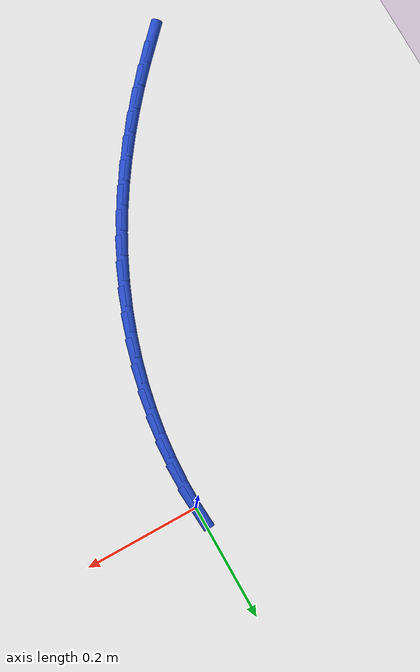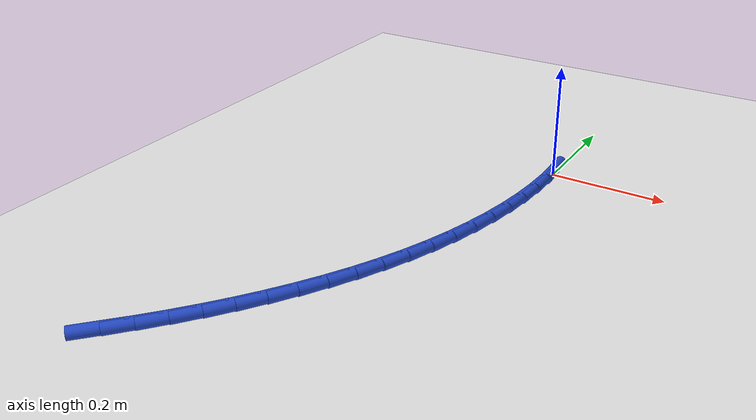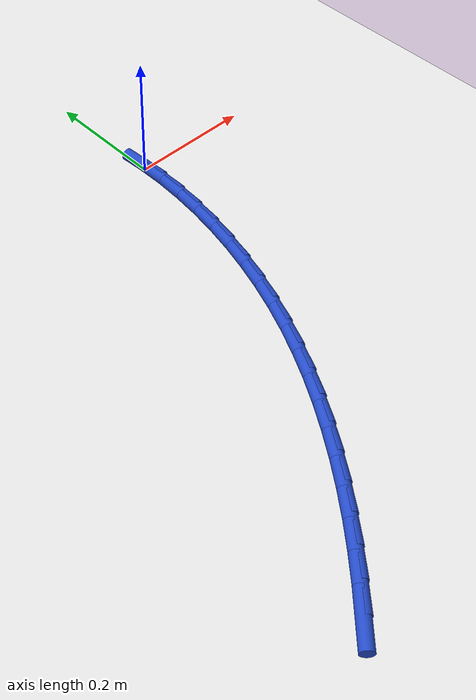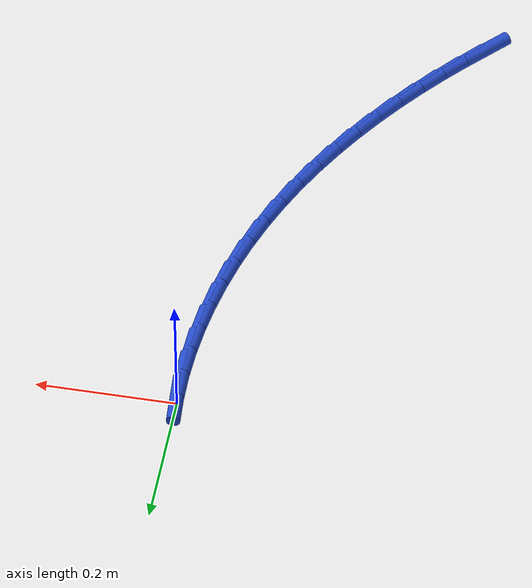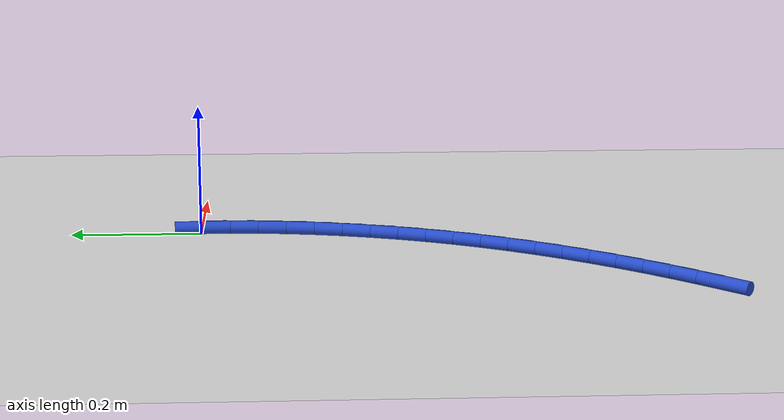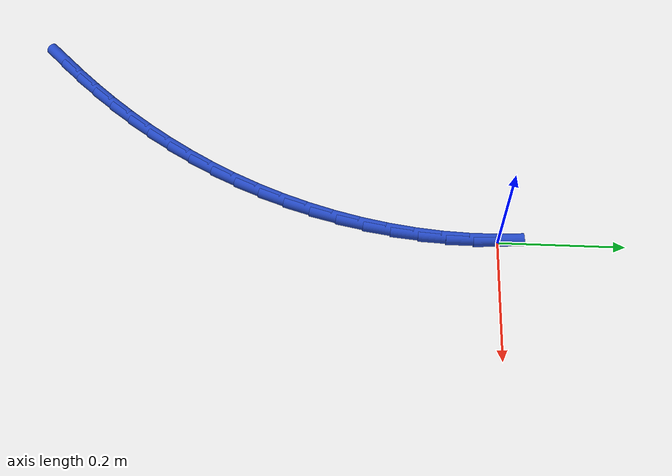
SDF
<sdf version="1.6">
 <world name="default">
  <model name="ground_plane">
   <static>1</static>
   <link name="link">
    <collision name="collision">
     <geometry><plane><normal>0 0 1</normal><size>100 100</size></plane></geometry>
     <surface><friction><ode><mu>100</mu><mu2>50</mu2></ode></friction></surface>
    </collision>
    <visual name="visual">
     <cast_shadows>0</cast_shadows>
     <geometry><plane><normal>0 0 1</normal><size>100 100</size></plane></geometry>
     <material>
      <script><uri>file://media/materials/scripts/gazebo.material</uri><name>Gazebo/WhiteGlow</name></script>
     </material>
    </visual>
   </link>
  </model>
  <model name="line">
   <link name="link_141">
    <pose>-0.32442191999599984 -0.7402582335218896 0.01 0 1.57 0.8094644933862783</pose>
    <collision name="collision">
     <geometry><cylinder><radius>0.01</radius><length>0.08</length></cylinder></geometry>
    </collision>
    <visual name="visual">
     <material>
      <script><name>Gazebo/Blue</name><uri>file://media/materials/scripts/gazebo.material</uri></script>
     </material>
     <geometry><cylinder><radius>0.01</radius><length>0.08</length></cylinder></geometry>
    </visual>
   </link>
   <link name="link_142">
    <pose>-0.2949185162580208 -0.7092994457396464 0.01 0 1.57 0.8390403096895802</pose>
    <collision name="collision">
     <geometry><cylinder><radius>0.01</radius><length>0.08</length></cylinder></geometry>
    </collision>
    <visual name="visual">
     <material>
      <script><name>Gazebo/Blue</name><uri>file://media/materials/scripts/gazebo.material</uri></script>
     </material>
     <geometry><cylinder><radius>0.01</radius><length>0.08</length></cylinder></geometry>
    </visual>
   </link>
   <link name="link_143">
    <pose>-0.2661581825769336 -0.6772753751034213 0.01 0 1.57 0.870017253197634</pose>
    <collision name="collision">
     <geometry><cylinder><radius>0.01</radius><length>0.08</length></cylinder></geometry>
    </collision>
    <visual name="visual">
     <material>
      <script><name>Gazebo/Blue</name><uri>file://media/materials/scripts/gazebo.material</uri></script>
     </material>
     <geometry><cylinder><radius>0.01</radius><length>0.08</length></cylinder></geometry>
    </visual>
   </link>
   <link name="link_144">
    <pose>-0.23824021957058938 -0.6441823610554582 0.01 0 1.57 0.9025674751337581</pose>
    <collision name="collision">
     <geometry><cylinder><radius>0.01</radius><length>0.08</length></cylinder></geometry>
    </collision>
    <visual name="visual">
     <material>
      <script><name>Gazebo/Blue</name><uri>file://media/materials/scripts/gazebo.material</uri></script>
     </material>
     <geometry><cylinder><radius>0.01</radius><length>0.08</length></cylinder></geometry>
    </visual>
   </link>
   <link name="link_145">
    <pose>-0.2112876415035133 -0.6100381769081172 0.01 0 1.57 0.9368048212703783</pose>
    <collision name="collision">
     <geometry><cylinder><radius>0.01</radius><length>0.08</length></cylinder></geometry>
    </collision>
    <visual name="visual">
     <material>
      <script><name>Gazebo/Blue</name><uri>file://media/materials/scripts/gazebo.material</uri></script>
     </material>
     <geometry><cylinder><radius>0.01</radius><length>0.08</length></cylinder></geometry>
    </visual>
   </link>
   <link name="link_146">
    <pose>-0.18542346917085367 -0.5748606018765414 0.01 0 1.57 0.9728383027610654</pose>
    <collision name="collision">
     <geometry><cylinder><radius>0.01</radius><length>0.08</length></cylinder></geometry>
    </collision>
    <visual name="visual">
     <material>
      <script><name>Gazebo/Blue</name><uri>file://media/materials/scripts/gazebo.material</uri></script>
     </material>
     <geometry><cylinder><radius>0.01</radius><length>0.08</length></cylinder></geometry>
    </visual>
   </link>
   <link name="link_147">
    <pose>-0.16077072336776022 -0.5386674151758757 0.01 0 1.57 1.0107691833866859</pose>
    <collision name="collision">
     <geometry><cylinder><radius>0.01</radius><length>0.08</length></cylinder></geometry>
    </collision>
    <visual name="visual">
     <material>
      <script><name>Gazebo/Blue</name><uri>file://media/materials/scripts/gazebo.material</uri></script>
     </material>
     <geometry><cylinder><radius>0.01</radius><length>0.08</length></cylinder></geometry>
    </visual>
   </link>
   <link name="link_148">
    <pose>-0.13745242488938123 -0.5014763960212637 0.01 0 1.57 1.0506872020791012</pose>
    <collision name="collision">
     <geometry><cylinder><radius>0.01</radius><length>0.08</length></cylinder></geometry>
    </collision>
    <visual name="visual">
     <material>
      <script><name>Gazebo/Blue</name><uri>file://media/materials/scripts/gazebo.material</uri></script>
     </material>
     <geometry><cylinder><radius>0.01</radius><length>0.08</length></cylinder></geometry>
    </visual>
   </link>
   <link name="link_149">
    <pose>-0.11559159453086554 -0.4633053236278491 0.01 0 1.57 1.0926659209882363</pose>
    <collision name="collision">
     <geometry><cylinder><radius>0.01</radius><length>0.08</length></cylinder></geometry>
    </collision>
    <visual name="visual">
     <material>
      <script><name>Gazebo/Blue</name><uri>file://media/materials/scripts/gazebo.material</uri></script>
     </material>
     <geometry><cylinder><radius>0.01</radius><length>0.08</length></cylinder></geometry>
    </visual>
   </link>
   <link name="link_150">
    <pose>-0.09531125308736192 -0.424171977210776 0.01 0 1.57 1.1367572335477811</pose>
    <collision name="collision">
     <geometry><cylinder><radius>0.01</radius><length>0.08</length></cylinder></geometry>
    </collision>
    <visual name="visual">
     <material>
      <script><name>Gazebo/Blue</name><uri>file://media/materials/scripts/gazebo.material</uri></script>
     </material>
     <geometry><cylinder><radius>0.01</radius><length>0.08</length></cylinder></geometry>
    </visual>
   </link>
   <link name="link_151">
    <pose>-0.07673442135401896 -0.38409413598518743 0.01 0 1.57 1.1826431945253815</pose>
    <collision name="collision">
     <geometry><cylinder><radius>0.01</radius><length>0.08</length></cylinder></geometry>
    </collision>
    <visual name="visual">
     <material>
      <script><name>Gazebo/Blue</name><uri>file://media/materials/scripts/gazebo.material</uri></script>
     </material>
     <geometry><cylinder><radius>0.01</radius><length>0.08</length></cylinder></geometry>
    </visual>
   </link>
   <link name="link_152">
    <pose>-0.05997600934984536 -0.34310976484577527 0.01 0 1.57 1.2289274677183937</pose>
    <collision name="collision">
     <geometry><cylinder><radius>0.01</radius><length>0.08</length></cylinder></geometry>
    </collision>
    <visual name="visual">
     <material>
      <script><name>Gazebo/Blue</name><uri>file://media/materials/scripts/gazebo.material</uri></script>
     </material>
     <geometry><cylinder><radius>0.01</radius><length>0.08</length></cylinder></geometry>
    </visual>
   </link>
   <link name="link_153">
    <pose>-0.045114913287678596 -0.30134645798262333 0.01 0 1.57 1.2754928407168278</pose>
    <collision name="collision">
     <geometry><cylinder><radius>0.01</radius><length>0.08</length></cylinder></geometry>
    </collision>
    <visual name="visual">
     <material>
      <script><name>Gazebo/Blue</name><uri>file://media/materials/scripts/gazebo.material</uri></script>
     </material>
     <geometry><cylinder><radius>0.01</radius><length>0.08</length></cylinder></geometry>
    </visual>
   </link>
   <link name="link_154">
    <pose>-0.032220037143973104 -0.25895667774616143 0.01 0 1.57 1.3226625828399476</pose>
    <collision name="collision">
     <geometry><cylinder><radius>0.01</radius><length>0.08</length></cylinder></geometry>
    </collision>
    <visual name="visual">
     <material>
      <script><name>Gazebo/Blue</name><uri>file://media/materials/scripts/gazebo.material</uri></script>
     </material>
     <geometry><cylinder><radius>0.01</radius><length>0.08</length></cylinder></geometry>
    </visual>
   </link>
   <link name="link_155">
    <pose>-0.021360284515703383 -0.21609288743124874 0.01 0 1.57 1.3707601993135567</pose>
    <collision name="collision">
     <geometry><cylinder><radius>0.01</radius><length>0.08</length></cylinder></geometry>
    </collision>
    <visual name="visual">
     <material>
      <script><name>Gazebo/Blue</name><uri>file://media/materials/scripts/gazebo.material</uri></script>
     </material>
     <geometry><cylinder><radius>0.01</radius><length>0.08</length></cylinder></geometry>
    </visual>
   </link>
   <link name="link_156">
    <pose>-0.012604558999843831 -0.1729075503327438 0.01 0 1.57 1.4201105215230507</pose>
    <collision name="collision">
     <geometry><cylinder><radius>0.01</radius><length>0.08</length></cylinder></geometry>
    </collision>
    <visual name="visual">
     <material>
      <script><name>Gazebo/Blue</name><uri>file://media/materials/scripts/gazebo.material</uri></script>
     </material>
     <geometry><cylinder><radius>0.01</radius><length>0.08</length></cylinder></geometry>
    </visual>
   </link>
   <link name="link_157">
    <pose>-0.006021764193369305 -0.12955312974550762 0.01 0 1.57 1.4710396384642581</pose>
    <collision name="collision">
     <geometry><cylinder><radius>0.01</radius><length>0.08</length></cylinder></geometry>
    </collision>
    <visual name="visual">
     <material>
      <script><name>Gazebo/Blue</name><uri>file://media/materials/scripts/gazebo.material</uri></script>
     </material>
     <geometry><cylinder><radius>0.01</radius><length>0.08</length></cylinder></geometry>
    </visual>
   </link>
   <link name="link_158">
    <pose>-0.0016808036932541414 -0.08618208896439873 0.01 0 1.57 1.5238731611793053</pose>
    <collision name="collision">
     <geometry><cylinder><radius>0.01</radius><length>0.08</length></cylinder></geometry>
    </collision>
    <visual name="visual">
     <material>
      <script><name>Gazebo/Blue</name><uri>file://media/materials/scripts/gazebo.material</uri></script>
     </material>
     <geometry><cylinder><radius>0.01</radius><length>0.08</length></cylinder></geometry>
    </visual>
   </link>
   <link name="link_159">
    <pose>0.0003494189035271218 -0.04294689128427648 0.01 0 1.57 -1.5626604365503873</pose>
    <collision name="collision">
     <geometry><cylinder><radius>0.01</radius><length>0.08</length></cylinder></geometry>
    </collision>
    <visual name="visual">
     <material>
      <script><name>Gazebo/Blue</name><uri>file://media/materials/scripts/gazebo.material</uri></script>
     </material>
     <geometry><cylinder><radius>0.01</radius><length>0.08</length></cylinder></geometry>
    </visual>
   </link>
   <link name="link_160">
    <pose>-3.469446951953614e-17 -2.0122792321330962e-16 0.01 0 1.57 -1.5050661861511183</pose>
    <collision name="collision">
     <geometry><cylinder><radius>0.01</radius><length>0.08</length></cylinder></geometry>
    </collision>
    <visual name="visual">
     <material>
      <script><name>Gazebo/Blue</name><uri>file://media/materials/scripts/gazebo.material</uri></script>
     </material>
     <geometry><cylinder><radius>0.01</radius><length>0.08</length></cylinder></geometry>
    </visual>
   </link>
  </model>
 </world>
</sdf>
